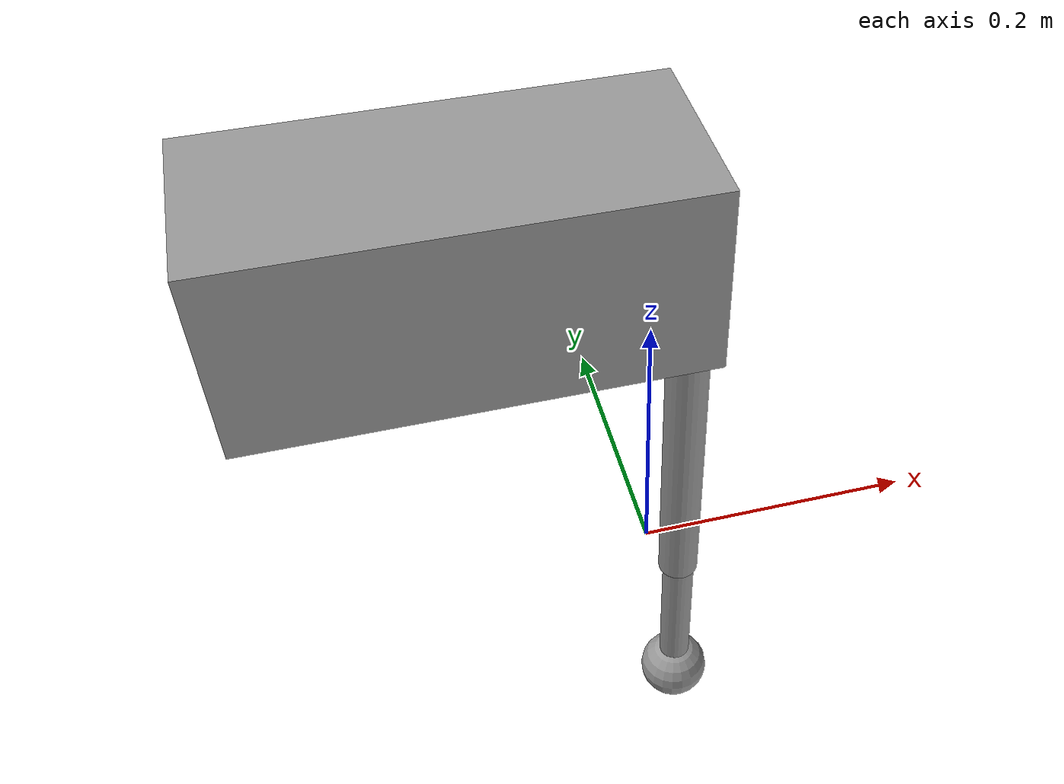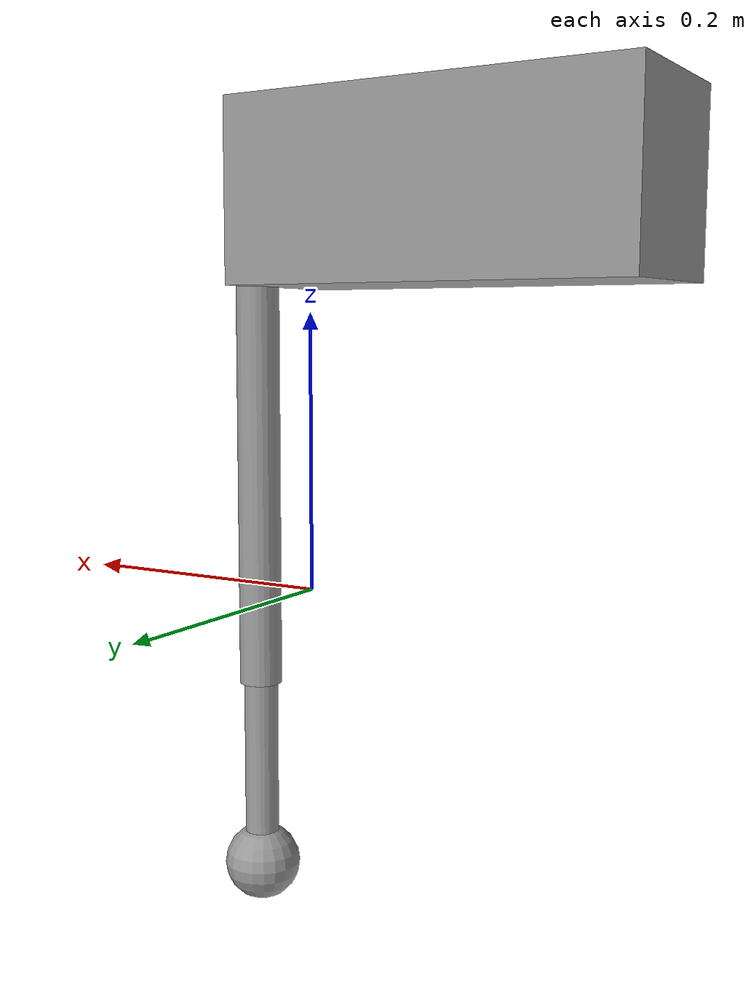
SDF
<?xml version='1.0'?>
<sdf version='1.7'>
  <model name='Untitled'>
    <link name='link_0'>
      <inertial>
        <mass>9.19959e-05</mass>
        <inertia>
          <ixx>1.83419e-07</ixx>
          <ixy>0</ixy>
          <ixz>0</ixz>
          <iyy>1.83419e-07</iyy>
          <iyz>0</iyz>
          <izz>7.00448e-09</izz>
        </inertia>
        <pose>0 0 0 0 -0 0</pose>
      </inertial>
      <pose>0.03285 0.018689 -0.131527 0 -0 0</pose>
      <self_collide>0</self_collide>
      <enable_wind>0</enable_wind>
      <kinematic>0</kinematic>
      <visual name='visual'>
        <pose>0 0 0 0 -0 0</pose>
        <geometry>
          <cylinder>
            <radius>0.0123401</radius>
            <length>0.153194</length>
          </cylinder>
        </geometry>
        <material>
          <lighting>1</lighting>
          <script>
            <uri>file://media/materials/scripts/gazebo.material</uri>
            <name>Gazebo/Grey</name>
          </script>
          <shader type='pixel'/>
          <emissive>0 0 0 1</emissive>
        </material>
        <transparency>0</transparency>
        <cast_shadows>1</cast_shadows>
      </visual>
      <collision name='collision'>
        <laser_retro>0</laser_retro>
        <max_contacts>10</max_contacts>
        <pose>0 0 0 0 -0 0</pose>
        <geometry>
          <cylinder>
            <radius>0.01234</radius>
            <length>0.153194</length>
          </cylinder>
        </geometry>
        <surface>
          <friction>
            <ode>
              <mu>1</mu>
              <mu2>1</mu2>
              <fdir1>0 0 0</fdir1>
              <slip1>0</slip1>
              <slip2>0</slip2>
            </ode>
            <torsional>
              <coefficient>1</coefficient>
              <patch_radius>0</patch_radius>
              <surface_radius>0</surface_radius>
              <use_patch_radius>1</use_patch_radius>
              <ode>
                <slip>0</slip>
              </ode>
            </torsional>
          </friction>
          <bounce>
            <restitution_coefficient>0</restitution_coefficient>
            <threshold>1e+06</threshold>
          </bounce>
          <contact>
            <collide_without_contact>0</collide_without_contact>
            <collide_without_contact_bitmask>1</collide_without_contact_bitmask>
            <collide_bitmask>1</collide_bitmask>
            <ode>
              <soft_cfm>0</soft_cfm>
              <soft_erp>0.2</soft_erp>
              <kp>1e+13</kp>
              <kd>1</kd>
              <max_vel>0.01</max_vel>
              <min_depth>0</min_depth>
            </ode>
            <bullet>
              <split_impulse>1</split_impulse>
              <split_impulse_penetration_threshold>-0.01</split_impulse_penetration_threshold>
              <soft_cfm>0</soft_cfm>
              <soft_erp>0.2</soft_erp>
              <kp>1e+13</kp>
              <kd>1</kd>
            </bullet>
          </contact>
        </surface>
      </collision>
    </link>
    <link name='link_1'>
      <inertial>
        <mass>0.00017202</mass>
        <inertia>
          <ixx>5e-08</ixx>
          <ixy>0</ixy>
          <ixz>0</ixz>
          <iyy>5e-08</iyy>
          <iyz>0</iyz>
          <izz>5e-08</izz>
        </inertia>
        <pose>0 0 0 0 -0 0</pose>
      </inertial>
      <pose>0.032762 0.018335 -0.207972 0 -0 0</pose>
      <gravity>1</gravity>
      <self_collide>0</self_collide>
      <kinematic>0</kinematic>
      <enable_wind>0</enable_wind>
      <visual name='visual'>
        <pose>0 0 0 0 -0 0</pose>
        <geometry>
          <sphere>
            <radius>0.0278585</radius>
          </sphere>
        </geometry>
        <material>
          <lighting>1</lighting>
          <script>
            <uri>file://media/materials/scripts/gazebo.material</uri>
            <name>Gazebo/Grey</name>
          </script>
          <shader type='pixel'>
            <normal_map>__default__</normal_map>
          </shader>
          <emissive>0 0 0 1</emissive>
        </material>
        <transparency>0</transparency>
        <cast_shadows>1</cast_shadows>
      </visual>
      <collision name='collision'>
        <laser_retro>0</laser_retro>
        <max_contacts>10</max_contacts>
        <pose>0 0 0 0 -0 0</pose>
        <geometry>
          <sphere>
            <radius>0.027859</radius>
          </sphere>
        </geometry>
        <surface>
          <friction>
            <ode>
              <mu>1</mu>
              <mu2>1</mu2>
              <fdir1>0 0 0</fdir1>
              <slip1>0</slip1>
              <slip2>0</slip2>
            </ode>
            <torsional>
              <coefficient>1</coefficient>
              <patch_radius>0</patch_radius>
              <surface_radius>0</surface_radius>
              <use_patch_radius>1</use_patch_radius>
              <ode>
                <slip>0</slip>
              </ode>
            </torsional>
          </friction>
          <bounce>
            <restitution_coefficient>0</restitution_coefficient>
            <threshold>1e+06</threshold>
          </bounce>
          <contact>
            <collide_without_contact>0</collide_without_contact>
            <collide_without_contact_bitmask>1</collide_without_contact_bitmask>
            <collide_bitmask>1</collide_bitmask>
            <ode>
              <soft_cfm>0</soft_cfm>
              <soft_erp>0.2</soft_erp>
              <kp>1e+13</kp>
              <kd>1</kd>
              <max_vel>0.01</max_vel>
              <min_depth>0</min_depth>
            </ode>
            <bullet>
              <split_impulse>1</split_impulse>
              <split_impulse_penetration_threshold>-0.01</split_impulse_penetration_threshold>
              <soft_cfm>0</soft_cfm>
              <soft_erp>0.2</soft_erp>
              <kp>1e+13</kp>
              <kd>1</kd>
            </bullet>
          </contact>
        </surface>
      </collision>
    </link>
    <link name='link_2'>
      <inertial>
        <mass>0.000304883</mass>
        <inertia>
          <ixx>2.62227e-06</ixx>
          <ixy>0</ixy>
          <ixz>0</ixz>
          <iyy>2.62227e-06</iyy>
          <iyz>0</iyz>
          <izz>3.61222e-08</izz>
        </inertia>
        <pose>0 0 0 0 -0 0</pose>
      </inertial>
      <pose>0.032484 0.019286 0.090661 0 -0 0</pose>
      <self_collide>0</self_collide>
      <enable_wind>0</enable_wind>
      <kinematic>0</kinematic>
      <visual name='visual'>
        <pose>0 0 0 0 -0 0</pose>
        <geometry>
          <cylinder>
            <radius>0.0153934</radius>
            <length>0.320156</length>
          </cylinder>
        </geometry>
        <material>
          <lighting>1</lighting>
          <script>
            <uri>file://media/materials/scripts/gazebo.material</uri>
            <name>Gazebo/Grey</name>
          </script>
          <shader type='pixel'/>
          <emissive>0 0 0 1</emissive>
        </material>
        <transparency>0</transparency>
        <cast_shadows>1</cast_shadows>
      </visual>
      <collision name='collision'>
        <laser_retro>0</laser_retro>
        <max_contacts>10</max_contacts>
        <pose>0 0 0 0 -0 0</pose>
        <geometry>
          <cylinder>
            <radius>0.015393</radius>
            <length>0.320156</length>
          </cylinder>
        </geometry>
        <surface>
          <friction>
            <ode>
              <mu>1</mu>
              <mu2>1</mu2>
              <fdir1>0 0 0</fdir1>
              <slip1>0</slip1>
              <slip2>0</slip2>
            </ode>
            <torsional>
              <coefficient>1</coefficient>
              <patch_radius>0</patch_radius>
              <surface_radius>0</surface_radius>
              <use_patch_radius>1</use_patch_radius>
              <ode>
                <slip>0</slip>
              </ode>
            </torsional>
          </friction>
          <bounce>
            <restitution_coefficient>0</restitution_coefficient>
            <threshold>1e+06</threshold>
          </bounce>
          <contact>
            <collide_without_contact>0</collide_without_contact>
            <collide_without_contact_bitmask>1</collide_without_contact_bitmask>
            <collide_bitmask>1</collide_bitmask>
            <ode>
              <soft_cfm>0</soft_cfm>
              <soft_erp>0.2</soft_erp>
              <kp>1e+13</kp>
              <kd>1</kd>
              <max_vel>0.01</max_vel>
              <min_depth>0</min_depth>
            </ode>
            <bullet>
              <split_impulse>1</split_impulse>
              <split_impulse_penetration_threshold>-0.01</split_impulse_penetration_threshold>
              <soft_cfm>0</soft_cfm>
              <soft_erp>0.2</soft_erp>
              <kp>1e+13</kp>
              <kd>1</kd>
            </bullet>
          </contact>
        </surface>
      </collision>
    </link>
    <link name='link_3'>
      <inertial>
        <mass>0.00462081</mass>
        <inertia>
          <ixx>1.22756e-05</ixx>
          <ixy>0</ixy>
          <ixz>0</ixz>
          <iyy>3.83549e-05</iyy>
          <iyz>0</iyz>
          <izz>3.86014e-05</izz>
        </inertia>
        <pose>0 0 0 0 -0 0</pose>
      </inertial>
      <pose>-0.117184 0.000764 0.280661 0 -0 0</pose>
      <self_collide>0</self_collide>
      <enable_wind>0</enable_wind>
      <kinematic>0</kinematic>
      <visual name='visual'>
        <pose>0 0 0 0 -0 0</pose>
        <geometry>
          <box>
            <size>0.289804 0.127513 0.124978</size>
          </box>
        </geometry>
        <material>
          <lighting>1</lighting>
          <script>
            <uri>file://media/materials/scripts/gazebo.material</uri>
            <name>Gazebo/Grey</name>
          </script>
          <shader type='pixel'/>
          <emissive>0 0 0 1</emissive>
        </material>
        <transparency>0</transparency>
        <cast_shadows>1</cast_shadows>
      </visual>
      <collision name='collision'>
        <laser_retro>0</laser_retro>
        <max_contacts>10</max_contacts>
        <pose>0 0 0 0 -0 0</pose>
        <geometry>
          <box>
            <size>0.289804 0.127513 0.124978</size>
          </box>
        </geometry>
        <surface>
          <friction>
            <ode>
              <mu>1</mu>
              <mu2>1</mu2>
              <fdir1>0 0 0</fdir1>
              <slip1>0</slip1>
              <slip2>0</slip2>
            </ode>
            <torsional>
              <coefficient>1</coefficient>
              <patch_radius>0</patch_radius>
              <surface_radius>0</surface_radius>
              <use_patch_radius>1</use_patch_radius>
              <ode>
                <slip>0</slip>
              </ode>
            </torsional>
          </friction>
          <bounce>
            <restitution_coefficient>0</restitution_coefficient>
            <threshold>1e+06</threshold>
          </bounce>
          <contact>
            <collide_without_contact>0</collide_without_contact>
            <collide_without_contact_bitmask>1</collide_without_contact_bitmask>
            <collide_bitmask>1</collide_bitmask>
            <ode>
              <soft_cfm>0</soft_cfm>
              <soft_erp>0.2</soft_erp>
              <kp>1e+13</kp>
              <kd>1</kd>
              <max_vel>0.01</max_vel>
              <min_depth>0</min_depth>
            </ode>
            <bullet>
              <split_impulse>1</split_impulse>
              <split_impulse_penetration_threshold>-0.01</split_impulse_penetration_threshold>
              <soft_cfm>0</soft_cfm>
              <soft_erp>0.2</soft_erp>
              <kp>1e+13</kp>
              <kd>1</kd>
            </bullet>
          </contact>
        </surface>
      </collision>
    </link>
    <joint name='link_0_JOINT_4' type='fixed'>
      <parent>link_0</parent>
      <child>link_1</child>
      <pose>0 0 0 0 -0 0</pose>
      <physics>
        <ode>
          <limit>
            <cfm>0</cfm>
            <erp>0.2</erp>
          </limit>
          <suspension>
            <cfm>0</cfm>
            <erp>0.2</erp>
          </suspension>
        </ode>
      </physics>
    </joint>
    <joint name='link_2_JOINT_3' type='revolute'>
      <parent>link_2</parent>
      <child>link_0</child>
      <pose>0 0 0.07 0 -0 0</pose>
      <axis>
        <xyz>1 0 0</xyz>
        <limit>
          <lower>-1.79769e+308</lower>
          <upper>1.79769e+308</upper>
          <effort>-1</effort>
          <velocity>-1</velocity>
        </limit>
        <dynamics>
          <spring_reference>0</spring_reference>
          <spring_stiffness>0</spring_stiffness>
          <damping>0</damping>
        </dynamics>
      </axis>
      <physics>
        <ode>
          <limit>
            <cfm>0</cfm>
            <erp>0.2</erp>
          </limit>
          <suspension>
            <cfm>0</cfm>
            <erp>0.2</erp>
          </suspension>
        </ode>
      </physics>
    </joint>
    <joint name='link_3_JOINT_2' type='revolute'>
      <parent>link_3</parent>
      <child>link_2</child>
      <pose>-0 0 0.13 0 -0 0</pose>
      <axis>
        <xyz>1 0 0</xyz>
        <limit>
          <lower>-1.79769e+308</lower>
          <upper>1.79769e+308</upper>
          <effort>-1</effort>
          <velocity>-1</velocity>
        </limit>
        <dynamics>
          <spring_reference>0</spring_reference>
          <spring_stiffness>0</spring_stiffness>
          <damping>0</damping>
        </dynamics>
      </axis>
      <physics>
        <ode>
          <limit>
            <cfm>0</cfm>
            <erp>0.2</erp>
          </limit>
          <suspension>
            <cfm>0</cfm>
            <erp>0.2</erp>
          </suspension>
        </ode>
      </physics>
    </joint>
    <static>0</static>
    <allow_auto_disable>1</allow_auto_disable>
  </model>
</sdf>
